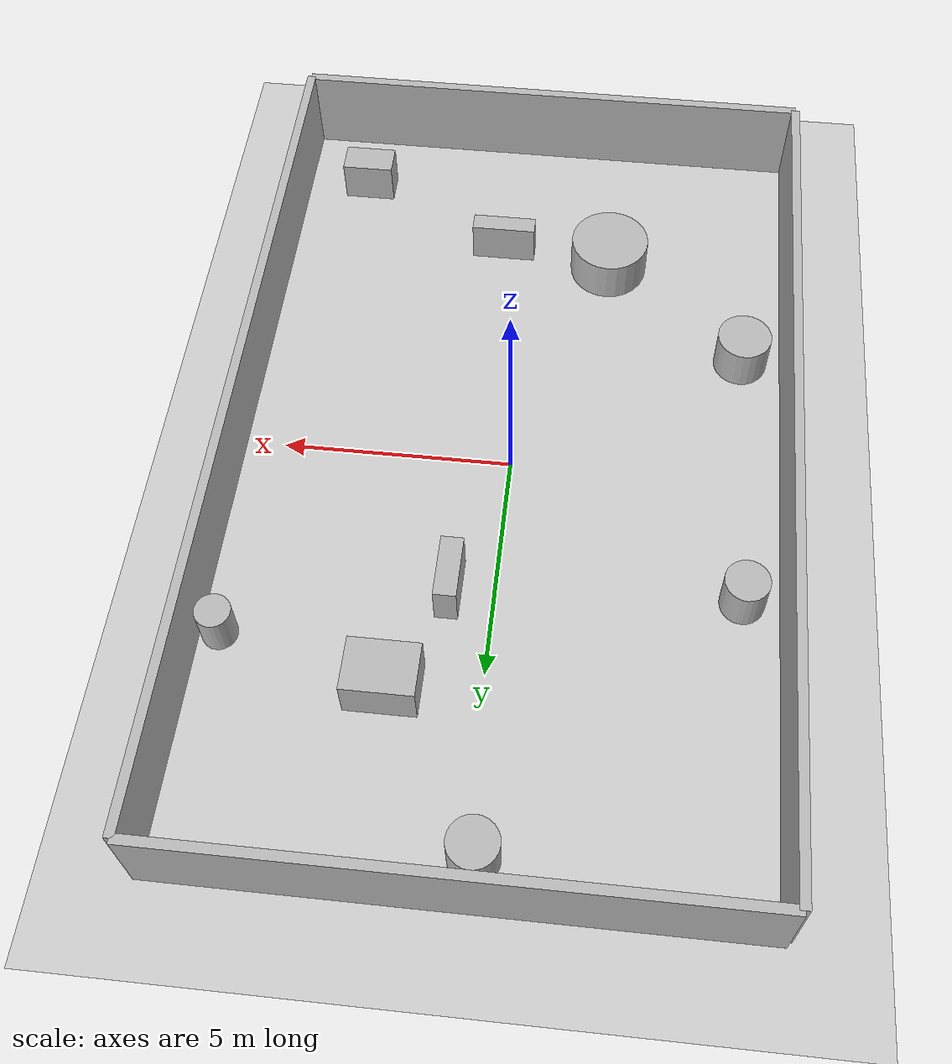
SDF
<?xml version="1.0"?>
<sdf version="1.6">
  <world name="env_71">

    <include><uri>model://ground_plane</uri></include>
    <include><uri>model://sun</uri></include>

    <!-- WALLS -->
    <model name="wall_north"><static>true</static><pose>0 9.603589053527713 1 0 0 0</pose>
      <link name="link"><collision name="collision">
        <geometry><box><size>11.894406273934935 0.2 2</size></box></geometry>
      </collision><visual name="visual">
        <geometry><box><size>11.894406273934935 0.2 2</size></box></geometry>
      </visual></link>
    </model>

    <model name="wall_south"><static>true</static><pose>0 -9.603589053527713 1 0 0 0</pose>
      <link name="link"><collision name="collision">
        <geometry><box><size>11.894406273934935 0.2 2</size></box></geometry>
      </collision><visual name="visual">
        <geometry><box><size>11.894406273934935 0.2 2</size></box></geometry>
      </visual></link>
    </model>

    <model name="wall_east"><static>true</static><pose>5.947203136967468 0 1 0 0 1.57</pose>
      <link name="link"><collision name="collision">
        <geometry><box><size>19.207178107055427 0.2 2</size></box></geometry>
      </collision><visual name="visual">
        <geometry><box><size>19.207178107055427 0.2 2</size></box></geometry>
      </visual></link>
    </model>

    <model name="wall_west"><static>true</static><pose>-5.947203136967468 0 1 0 0 1.57</pose>
      <link name="link"><collision name="collision">
        <geometry><box><size>19.207178107055427 0.2 2</size></box></geometry>
      </collision><visual name="visual">
        <geometry><box><size>19.207178107055427 0.2 2</size></box></geometry>
      </visual></link>
    </model>

    <!-- SENSOR -->

    <model name="lidar_sensor">
      <static>true</static>
      <pose>4.168300199592697 -5.723856730810098 0.4 0 0 0</pose>
      <link name="link">
        <sensor name="lidar" type="ray">
          <pose>0 0 0 0 0 0</pose>
          <visualize>true</visualize>
          <always_on>true</always_on>
          <update_rate>10</update_rate>
          <ray>
            <scan><horizontal>
              <samples>90</samples>
              <resolution>1</resolution>
              <min_angle>-3.14159</min_angle>
              <max_angle>3.14159</max_angle>
            </horizontal></scan>
            <range><min>0.15</min><max>20.0</max><resolution>0.01</resolution></range>
          </ray>
          <plugin name="lidar_plugin" filename="liblidar_plugin.so"/>
        </sensor>
      </link>
    </model>

    <!-- OBSTACLES -->

    <model name="obstacle_0">
      <static>true</static>
      <pose>-4.9385606141994405 -3.302831099399845 0.5 0 0 0</pose>
      <link name="link">
        <collision name="collision">
          <geometry><cylinder><radius>0.6</radius><length>1.0</length></cylinder></geometry>
        </collision>
        <visual name="visual">
          <geometry><cylinder><radius>0.6</radius><length>1.0</length></cylinder></geometry>
        </visual>
      </link>
    </model>

    <model name="obstacle_1">
      <static>true</static>
      <pose>-0.21704654417917713 8.696984752318514 0.5 0 0 0</pose>
      <link name="link">
        <collision name="collision">
          <geometry><cylinder><radius>0.51</radius><length>1.0</length></cylinder></geometry>
        </collision>
        <visual name="visual">
          <geometry><cylinder><radius>0.51</radius><length>1.0</length></cylinder></geometry>
        </visual>
      </link>
    </model>

    <model name="obstacle_2">
      <static>true</static>
      <pose>-5.062703514398509 2.8998900615475005 0.5 0 0 0</pose>
      <link name="link">
        <collision name="collision">
          <geometry><cylinder><radius>0.47</radius><length>1.0</length></cylinder></geometry>
        </collision>
        <visual name="visual">
          <geometry><cylinder><radius>0.47</radius><length>1.0</length></cylinder></geometry>
        </visual>
      </link>
    </model>

    <model name="obstacle_3">
      <static>true</static>
      <pose>0.788742234404114 -6.141801976458848 0.5 0 0 0</pose>
      <link name="link">
        <collision name="collision">
          <geometry><box><size>1.46 0.41 1.0</size></box></geometry>
        </collision>
        <visual name="visual">
          <geometry><box><size>1.46 0.41 1.0</size></box></geometry>
        </visual>
      </link>
    </model>

    <model name="obstacle_4">
      <static>true</static>
      <pose>1.9571983907532262 5.484258041812964 0.5 0 0 0</pose>
      <link name="link">
        <collision name="collision">
          <geometry><box><size>1.49 1.12 1.0</size></box></geometry>
        </collision>
        <visual name="visual">
          <geometry><box><size>1.49 1.12 1.0</size></box></geometry>
        </visual>
      </link>
    </model>

    <model name="obstacle_5">
      <static>true</static>
      <pose>5.4321916219603485 4.649806582959082 0.5 0 0 0</pose>
      <link name="link">
        <collision name="collision">
          <geometry><cylinder><radius>0.37</radius><length>1.0</length></cylinder></geometry>
        </collision>
        <visual name="visual">
          <geometry><cylinder><radius>0.37</radius><length>1.0</length></cylinder></geometry>
        </visual>
      </link>
    </model>

    <model name="obstacle_6">
      <static>true</static>
      <pose>4.3152659096677715 -7.935841202722772 0.5 0 0 0</pose>
      <link name="link">
        <collision name="collision">
          <geometry><box><size>1.18 0.69 1.0</size></box></geometry>
        </collision>
        <visual name="visual">
          <geometry><box><size>1.18 0.69 1.0</size></box></geometry>
        </visual>
      </link>
    </model>

    <model name="obstacle_7">
      <static>true</static>
      <pose>0.9320603498741242 3.1787137323017074 0.5 0 0 0</pose>
      <link name="link">
        <collision name="collision">
          <geometry><box><size>0.48 1.34 1.0</size></box></geometry>
        </collision>
        <visual name="visual">
          <geometry><box><size>0.48 1.34 1.0</size></box></geometry>
        </visual>
      </link>
    </model>

    <model name="obstacle_8">
      <static>true</static>
      <pose>-1.7462615537285426 -5.863616678840186 0.5 0 0 0</pose>
      <link name="link">
        <collision name="collision">
          <geometry><cylinder><radius>0.89</radius><length>1.0</length></cylinder></geometry>
        </collision>
        <visual name="visual">
          <geometry><cylinder><radius>0.89</radius><length>1.0</length></cylinder></geometry>
        </visual>
      </link>
    </model>

  </world>
</sdf>
